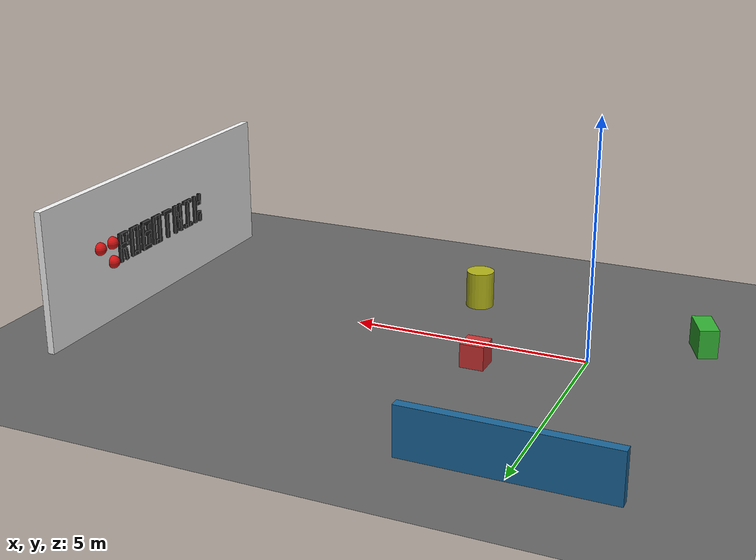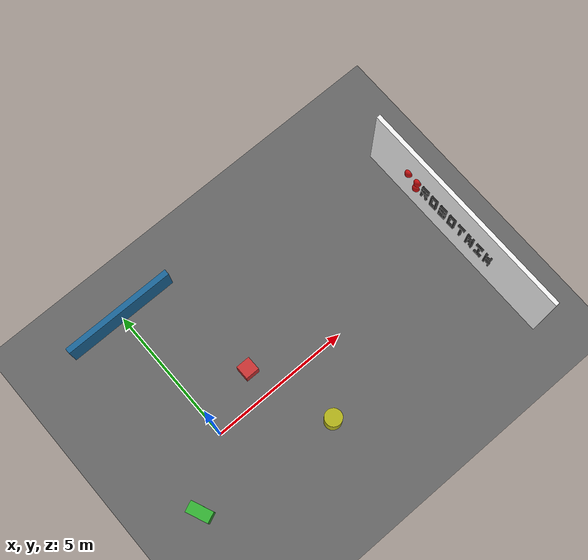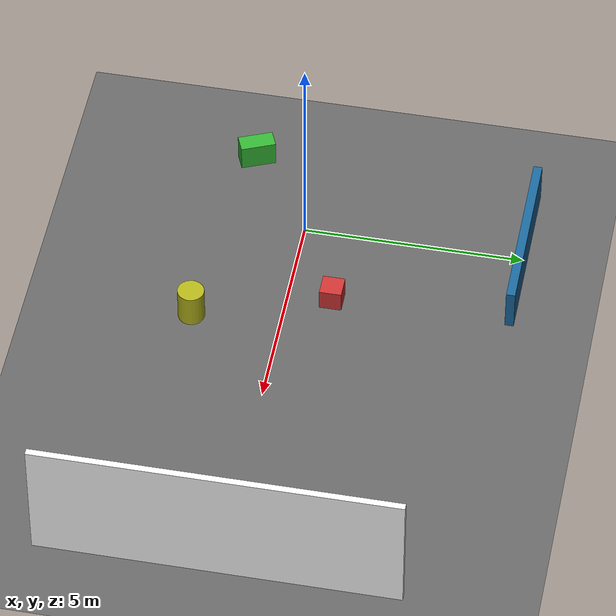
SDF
<?xml version="1.0" ?>
<sdf version="1.9">
<world name="robotnik_world">

  <!-- ============================================================
       PHYSICS
  ============================================================ -->
  <physics name="1ms" type="ignored">
    <max_step_size>0.001</max_step_size>
    <real_time_factor>1.0</real_time_factor>
  </physics>

  <!-- ============================================================
       WORLD SYSTEM PLUGINS
  ============================================================ -->

  <plugin filename="gz-sim-physics-system"
          name="gz::sim::systems::Physics"/>
  <plugin filename="gz-sim-user-commands-system"
          name="gz::sim::systems::UserCommands"/>
  <plugin filename="gz-sim-scene-broadcaster-system"
          name="gz::sim::systems::SceneBroadcaster"/>
  <plugin filename="gz-sim-sensors-system"
          name="gz::sim::systems::Sensors">
    <render_engine>ogre2</render_engine>
  </plugin>
  <plugin filename="gz-sim-imu-system"
          name="gz::sim::systems::Imu"/>
  <plugin filename="gz-sim-navsat-system"
          name="gz::sim::systems::NavSat"/>
  <plugin filename="gz-sim-contact-system"
          name="gz::sim::systems::Contact"/>

  <!-- ============================================================
       SCENE
  ============================================================ -->

  <light name="sun" type="directional">
    <cast_shadows>true</cast_shadows>
    <pose>0 0 10 0 0 0</pose>
    <diffuse>0.8 0.8 0.8 1</diffuse>
    <specular>0.2 0.2 0.2 1</specular>
    <direction>-0.5 0.1 -0.9</direction>
    <attenuation>
      <range>1000</range>
      <constant>0.9</constant>
      <linear>0.01</linear>
      <quadratic>0.001</quadratic>
    </attenuation>
  </light>

  <!-- Fill light facing the panel from the front so the relief reads clearly -->
  <light name="panel_fill" type="point">
    <pose>0 5 3 0 0 0</pose>
    <diffuse>0.6 0.6 0.6 1</diffuse>
    <specular>0.1 0.1 0.1 1</specular>
    <attenuation>
      <range>30</range>
      <constant>0.5</constant>
      <linear>0.05</linear>
      <quadratic>0.002</quadratic>
    </attenuation>
    <cast_shadows>false</cast_shadows>
  </light>

  <!-- Ground plane -->
  <model name="ground_plane">
    <static>true</static>
    <link name="link">
      <collision name="collision">
        <geometry>
          <plane>
            <normal>0 0 1</normal>
            <size>100 100</size>
          </plane>
        </geometry>
        <surface>
          <friction>
            <ode>
              <mu>1.0</mu>
              <mu2>1.0</mu2>
            </ode>
          </friction>
          <contact>
            <ode>
              <min_depth>0.001</min_depth>
            </ode>
          </contact>
        </surface>
      </collision>
      <visual name="visual">
        <geometry>
          <plane>
            <normal>0 0 1</normal>
            <size>100 100</size>
          </plane>
        </geometry>
        <material>
          <ambient>0.4 0.4 0.4 1</ambient>
          <diffuse>0.4 0.4 0.4 1</diffuse>
          <specular>0.1 0.1 0.1 1</specular>
        </material>
      </visual>
    </link>
  </model>

  <model name="Robotnik panel">

    <static>true</static>
    <pose>0 0 0 0 0 -1.57</pose>

    <model name="robotnik_backdrop">
      <static>true</static>
      <pose>0 10 1.5 0 0 0</pose>
      <link name="link">
        <collision name="c">
          <geometry><box><size>8 0.15 3</size></box></geometry>
        </collision>
        <visual name="v">
          <geometry><box><size>8 0.15 3</size></box></geometry>
          <material>
            <ambient>0.97 0.97 0.97 1</ambient>
            <diffuse>0.97 0.97 0.97 1</diffuse>
            <specular>0.4 0.4 0.4 1</specular>
          </material>
        </visual>
      </link>
    </model>

    <model name="logo_dot_tl">
      <static>true</static>
      <pose>-2.275 9.9 1.7 0 0 0</pose>
      <link name="link">
        <visual name="v">
          <geometry><sphere><radius>0.14</radius></sphere></geometry>
          <material>
            <ambient>0.82 0.07 0.07 1</ambient>
            <diffuse>0.82 0.07 0.07 1</diffuse>
            <specular>0.4 0.1 0.1 1</specular>
          </material>
        </visual>
      </link>
    </model>

    <model name="logo_dot_tr">
      <static>true</static>
      <pose>-1.85 9.9 1.7 0 0 0</pose>
      <link name="link">
        <visual name="v">
          <geometry><sphere><radius>0.14</radius></sphere></geometry>
          <material>
            <ambient>0.82 0.07 0.07 1</ambient>
            <diffuse>0.82 0.07 0.07 1</diffuse>
            <specular>0.4 0.1 0.1 1</specular>
          </material>
        </visual>
      </link>
    </model>

    <model name="logo_dot_bc">
      <static>true</static>
      <pose>-1.85 9.9 1.275 0 0 0</pose>
      <link name="link">
        <visual name="v">
          <geometry><sphere><radius>0.14</radius></sphere></geometry>
          <material>
            <ambient>0.82 0.07 0.07 1</ambient>
            <diffuse>0.82 0.07 0.07 1</diffuse>
            <specular>0.4 0.1 0.1 1</specular>
          </material>
        </visual>
      </link>
    </model>

    <model name="robotnik_letters">
      <static>true</static>
      <pose>0 9.89 1.5 0 0 0</pose>
      <link name="link">

        <!-- ─── R  (centre X = −1.47) ───────────────────────────── -->
        <!-- full left vertical -->
        <visual name="r_left">
          <pose>-1.58 0  0.00 0 0 0</pose>
          <geometry><box><size>0.08 0.07 0.64</size></box></geometry>
          <material><ambient>0.15 0.15 0.15 1</ambient><diffuse>0.15 0.15 0.15 1</diffuse><specular>0.05 0.05 0.05 1</specular></material>
        </visual>
        <!-- top horizontal -->
        <visual name="r_top">
          <pose>-1.47 0  0.28 0 0 0</pose>
          <geometry><box><size>0.30 0.07 0.08</size></box></geometry>
          <material><ambient>0.15 0.15 0.15 1</ambient><diffuse>0.15 0.15 0.15 1</diffuse><specular>0.05 0.05 0.05 1</specular></material>
        </visual>
        <!-- mid horizontal (bowl divider) -->
        <visual name="r_mid">
          <pose>-1.47 0  0.04 0 0 0</pose>
          <geometry><box><size>0.30 0.07 0.08</size></box></geometry>
          <material><ambient>0.15 0.15 0.15 1</ambient><diffuse>0.15 0.15 0.15 1</diffuse><specular>0.05 0.05 0.05 1</specular></material>
        </visual>
        <!-- right vertical, upper bump -->
        <visual name="r_rtop">
          <pose>-1.36 0  0.16 0 0 0</pose>
          <geometry><box><size>0.08 0.07 0.24</size></box></geometry>
          <material><ambient>0.15 0.15 0.15 1</ambient><diffuse>0.15 0.15 0.15 1</diffuse><specular>0.05 0.05 0.05 1</specular></material>
        </visual>
        <!-- diagonal leg (shifted right to suggest the kick-out) -->
        <visual name="r_leg">
          <pose>-1.4 0 -0.18 0 -0.2 0</pose>
          <geometry><box><size>0.08 0.07 0.28</size></box></geometry>
          <material><ambient>0.15 0.15 0.15 1</ambient><diffuse>0.15 0.15 0.15 1</diffuse><specular>0.05 0.05 0.05 1</specular></material>
        </visual>

        <!-- ─── O  (centre X = −1.05) ───────────────────────────── -->
        <visual name="o1_left">
          <pose>-1.16 0  0.00 0 0 0</pose>
          <geometry><box><size>0.08 0.07 0.64</size></box></geometry>
          <material><ambient>0.15 0.15 0.15 1</ambient><diffuse>0.15 0.15 0.15 1</diffuse><specular>0.05 0.05 0.05 1</specular></material>
        </visual>
        <visual name="o1_right">
          <pose>-0.94 0  0.00 0 0 0</pose>
          <geometry><box><size>0.08 0.07 0.64</size></box></geometry>
          <material><ambient>0.15 0.15 0.15 1</ambient><diffuse>0.15 0.15 0.15 1</diffuse><specular>0.05 0.05 0.05 1</specular></material>
        </visual>
        <visual name="o1_top">
          <pose>-1.05 0  0.28 0 0 0</pose>
          <geometry><box><size>0.14 0.07 0.08</size></box></geometry>
          <material><ambient>0.15 0.15 0.15 1</ambient><diffuse>0.15 0.15 0.15 1</diffuse><specular>0.05 0.05 0.05 1</specular></material>
        </visual>
        <visual name="o1_bot">
          <pose>-1.05 0 -0.28 0 0 0</pose>
          <geometry><box><size>0.14 0.07 0.08</size></box></geometry>
          <material><ambient>0.15 0.15 0.15 1</ambient><diffuse>0.15 0.15 0.15 1</diffuse><specular>0.05 0.05 0.05 1</specular></material>
        </visual>

        <!-- ─── B  (centre X = −0.63) ───────────────────────────── -->
        <visual name="b_left">
          <pose>-0.74 0  0.00 0 0 0</pose>
          <geometry><box><size>0.08 0.07 0.64</size></box></geometry>
          <material><ambient>0.15 0.15 0.15 1</ambient><diffuse>0.15 0.15 0.15 1</diffuse><specular>0.05 0.05 0.05 1</specular></material>
        </visual>
        <visual name="b_top">
          <pose>-0.63 0  0.28 0 0 0</pose>
          <geometry><box><size>0.30 0.07 0.08</size></box></geometry>
          <material><ambient>0.15 0.15 0.15 1</ambient><diffuse>0.15 0.15 0.15 1</diffuse><specular>0.05 0.05 0.05 1</specular></material>
        </visual>
        <visual name="b_mid">
          <pose>-0.63 0  0.04 0 0 0</pose>
          <geometry><box><size>0.30 0.07 0.08</size></box></geometry>
          <material><ambient>0.15 0.15 0.15 1</ambient><diffuse>0.15 0.15 0.15 1</diffuse><specular>0.05 0.05 0.05 1</specular></material>
        </visual>
        <visual name="b_bot">
          <pose>-0.63 0 -0.28 0 0 0</pose>
          <geometry><box><size>0.30 0.07 0.08</size></box></geometry>
          <material><ambient>0.15 0.15 0.15 1</ambient><diffuse>0.15 0.15 0.15 1</diffuse><specular>0.05 0.05 0.05 1</specular></material>
        </visual>
        <!-- right-side vertical, upper bump -->
        <visual name="b_rtop">
          <pose>-0.52 0  0.16 0 0 0</pose>
          <geometry><box><size>0.08 0.07 0.24</size></box></geometry>
          <material><ambient>0.15 0.15 0.15 1</ambient><diffuse>0.15 0.15 0.15 1</diffuse><specular>0.05 0.05 0.05 1</specular></material>
        </visual>
        <!-- right-side vertical, lower bump -->
        <visual name="b_rbot">
          <pose>-0.52 0 -0.12 0 0 0</pose>
          <geometry><box><size>0.08 0.07 0.24</size></box></geometry>
          <material><ambient>0.15 0.15 0.15 1</ambient><diffuse>0.15 0.15 0.15 1</diffuse><specular>0.05 0.05 0.05 1</specular></material>
        </visual>

        <!-- ─── O  (second, centre X = −0.21) ───────────────────── -->
        <visual name="o2_left">
          <pose>-0.32 0  0.00 0 0 0</pose>
          <geometry><box><size>0.08 0.07 0.64</size></box></geometry>
          <material><ambient>0.15 0.15 0.15 1</ambient><diffuse>0.15 0.15 0.15 1</diffuse><specular>0.05 0.05 0.05 1</specular></material>
        </visual>
        <visual name="o2_right">
          <pose>-0.10 0  0.00 0 0 0</pose>
          <geometry><box><size>0.08 0.07 0.64</size></box></geometry>
          <material><ambient>0.15 0.15 0.15 1</ambient><diffuse>0.15 0.15 0.15 1</diffuse><specular>0.05 0.05 0.05 1</specular></material>
        </visual>
        <visual name="o2_top">
          <pose>-0.21 0  0.28 0 0 0</pose>
          <geometry><box><size>0.14 0.07 0.08</size></box></geometry>
          <material><ambient>0.15 0.15 0.15 1</ambient><diffuse>0.15 0.15 0.15 1</diffuse><specular>0.05 0.05 0.05 1</specular></material>
        </visual>
        <visual name="o2_bot">
          <pose>-0.21 0 -0.28 0 0 0</pose>
          <geometry><box><size>0.14 0.07 0.08</size></box></geometry>
          <material><ambient>0.15 0.15 0.15 1</ambient><diffuse>0.15 0.15 0.15 1</diffuse><specular>0.05 0.05 0.05 1</specular></material>
        </visual>

        <!-- ─── T  (centre X = +0.21) ───────────────────────────── -->
        <visual name="t_top">
          <pose>0.21 0  0.28 0 0 0</pose>
          <geometry><box><size>0.30 0.07 0.08</size></box></geometry>
          <material><ambient>0.15 0.15 0.15 1</ambient><diffuse>0.15 0.15 0.15 1</diffuse><specular>0.05 0.05 0.05 1</specular></material>
        </visual>
        <!-- stem from just below the top bar to the bottom -->
        <visual name="t_vert">
          <pose>0.21 0 -0.04 0 0 0</pose>
          <geometry><box><size>0.08 0.07 0.56</size></box></geometry>
          <material><ambient>0.15 0.15 0.15 1</ambient><diffuse>0.15 0.15 0.15 1</diffuse><specular>0.05 0.05 0.05 1</specular></material>
        </visual>

        <!-- ─── N  (centre X = +0.63) ───────────────────────────── -->
        <visual name="n_left">
          <pose>0.52 0  0.00 0 0 0</pose>
          <geometry><box><size>0.08 0.07 0.64</size></box></geometry>
          <material><ambient>0.15 0.15 0.15 1</ambient><diffuse>0.15 0.15 0.15 1</diffuse><specular>0.05 0.05 0.05 1</specular></material>
        </visual>
        <visual name="n_right">
          <pose>0.74 0  0.00 0 0 0</pose>
          <geometry><box><size>0.08 0.07 0.64</size></box></geometry>
          <material><ambient>0.15 0.15 0.15 1</ambient><diffuse>0.15 0.15 0.15 1</diffuse><specular>0.05 0.05 0.05 1</specular></material>
        </visual>
        <!-- staircase diagonal from top-left to bottom-right -->
        <visual name="n_d1">
          <pose>0.58 0  0.20 0 0 0</pose>
          <geometry><box><size>0.08 0.07 0.24</size></box></geometry>
          <material><ambient>0.15 0.15 0.15 1</ambient><diffuse>0.15 0.15 0.15 1</diffuse><specular>0.05 0.05 0.05 1</specular></material>
        </visual>
        <visual name="n_d2">
          <pose>0.63 0  0.04 0 0 0</pose>
          <geometry><box><size>0.08 0.07 0.24</size></box></geometry>
          <material><ambient>0.15 0.15 0.15 1</ambient><diffuse>0.15 0.15 0.15 1</diffuse><specular>0.05 0.05 0.05 1</specular></material>
        </visual>
        <visual name="n_d3">
          <pose>0.68 0 -0.12 0 0 0</pose>
          <geometry><box><size>0.08 0.07 0.24</size></box></geometry>
          <material><ambient>0.15 0.15 0.15 1</ambient><diffuse>0.15 0.15 0.15 1</diffuse><specular>0.05 0.05 0.05 1</specular></material>
        </visual>

        <!-- ─── I  (centre X = +1.05) ───────────────────────────── -->
        <visual name="i_top">
          <pose>1.05 0  0.28 0 0 0</pose>
          <geometry><box><size>0.30 0.07 0.08</size></box></geometry>
          <material><ambient>0.15 0.15 0.15 1</ambient><diffuse>0.15 0.15 0.15 1</diffuse><specular>0.05 0.05 0.05 1</specular></material>
        </visual>
        <visual name="i_vert">
          <pose>1.05 0  0.00 0 0 0</pose>
          <geometry><box><size>0.08 0.07 0.64</size></box></geometry>
          <material><ambient>0.15 0.15 0.15 1</ambient><diffuse>0.15 0.15 0.15 1</diffuse><specular>0.05 0.05 0.05 1</specular></material>
        </visual>
        <visual name="i_bot">
          <pose>1.05 0 -0.28 0 0 0</pose>
          <geometry><box><size>0.30 0.07 0.08</size></box></geometry>
          <material><ambient>0.15 0.15 0.15 1</ambient><diffuse>0.15 0.15 0.15 1</diffuse><specular>0.05 0.05 0.05 1</specular></material>
        </visual>

        <!-- ─── K  (centre X = +1.47) ───────────────────────────── -->
        <visual name="k_left">
          <pose>1.36 0  0.00 0 0 0</pose>
          <geometry><box><size>0.08 0.07 0.64</size></box></geometry>
          <material><ambient>0.15 0.15 0.15 1</ambient><diffuse>0.15 0.15 0.15 1</diffuse><specular>0.05 0.05 0.05 1</specular></material>
        </visual>
        <!-- upper arm connecting to upper-right bars -->
        <visual name="k_arm1">
          <pose>1.50 0  0.12 0 0 0</pose>
          <geometry><box><size>0.16 0.07 0.08</size></box></geometry>
          <material><ambient>0.15 0.15 0.15 1</ambient><diffuse>0.15 0.15 0.15 1</diffuse><specular>0.05 0.05 0.05 1</specular></material>
        </visual>
        <!-- lower arm -->
        <visual name="k_arm2">
          <pose>1.50 0 -0.12 0 0 0</pose>
          <geometry><box><size>0.16 0.07 0.08</size></box></geometry>
          <material><ambient>0.15 0.15 0.15 1</ambient><diffuse>0.15 0.15 0.15 1</diffuse><specular>0.05 0.05 0.05 1</specular></material>
        </visual>
        <!-- upper-right tip -->
        <visual name="k_upper">
          <pose>1.56 0  0.21 0 0 0</pose>
          <geometry><box><size>0.06 0.07 0.24</size></box></geometry>
          <material><ambient>0.15 0.15 0.15 1</ambient><diffuse>0.15 0.15 0.15 1</diffuse><specular>0.05 0.05 0.05 1</specular></material>
        </visual>
        <!-- lower-right tip -->
        <visual name="k_lower">
          <pose>1.56 0 -0.21 0 0 0</pose>
          <geometry><box><size>0.06 0.07 0.24</size></box></geometry>
          <material><ambient>0.15 0.15 0.15 1</ambient><diffuse>0.15 0.15 0.15 1</diffuse><specular>0.05 0.05 0.05 1</specular></material>
        </visual>

      </link>
    </model>

</model>

  <model name="wall_east">
    <static>true</static>
    <pose>0 5 0.5 0 0 0</pose>
    <link name="link">
      <visual name="v">
        <geometry><box><size>4 0.2 1</size></box></geometry>
        <material><ambient>0.1 0.4 0.6 1</ambient><diffuse>0.1 0.4 0.6 1</diffuse></material>
      </visual>
      <collision name="c">
        <geometry><box><size>4 0.2 1</size></box></geometry>
      </collision>
    </link>
  </model>

  <model name="box_obstacle_1">
    <static>true</static>
    <pose>2 1 0.25 0 0 0</pose>
    <link name="link">
      <visual name="v">
        <geometry><box><size>0.5 0.5 0.5</size></box></geometry>
        <material><ambient>0.8 0.2 0.2 1</ambient><diffuse>0.8 0.2 0.2 1</diffuse></material>
      </visual>
      <collision name="c">
        <geometry><box><size>0.5 0.5 0.5</size></box></geometry>
      </collision>
    </link>
  </model>

  <model name="box_obstacle_2">
    <static>true</static>
    <pose>-2 -1.5 0.3 0 0 0.4</pose>
    <link name="link">
      <visual name="v">
        <geometry><box><size>0.4 0.8 0.6</size></box></geometry>
        <material><ambient>0.2 0.7 0.2 1</ambient><diffuse>0.2 0.7 0.2 1</diffuse></material>
      </visual>
      <collision name="c">
        <geometry><box><size>0.4 0.8 0.6</size></box></geometry>
      </collision>
    </link>
  </model>

  <model name="cylinder_obstacle">
    <static>true</static>
    <pose>3 -2 0.4 0 0 0</pose>
    <link name="link">
      <visual name="v">
        <geometry><cylinder><radius>0.3</radius><length>0.8</length></cylinder></geometry>
        <material><ambient>0.7 0.7 0.1 1</ambient><diffuse>0.7 0.7 0.1 1</diffuse></material>
      </visual>
      <collision name="c">
        <geometry><cylinder><radius>0.3</radius><length>0.8</length></cylinder></geometry>
      </collision>
    </link>
  </model>

</world>
</sdf>
